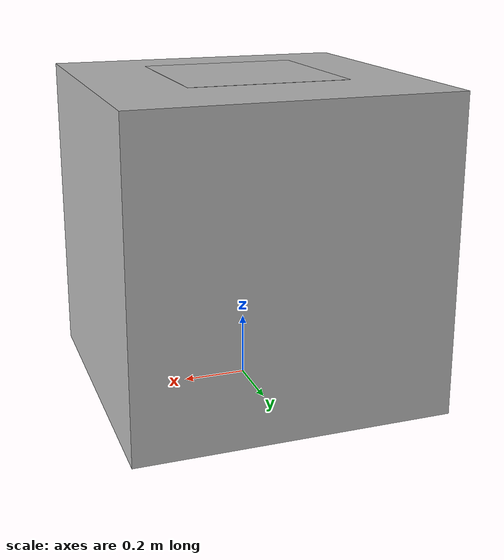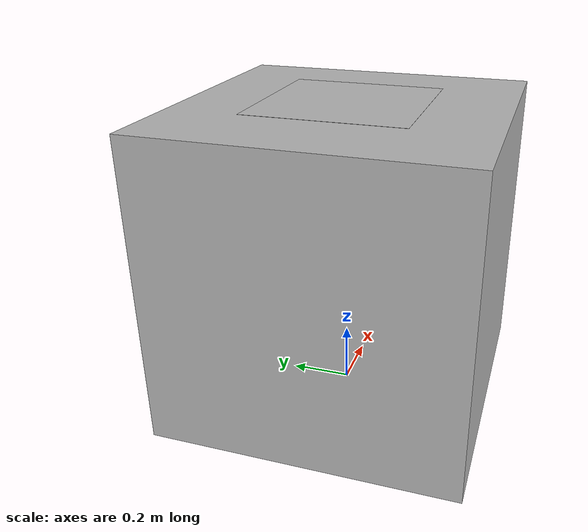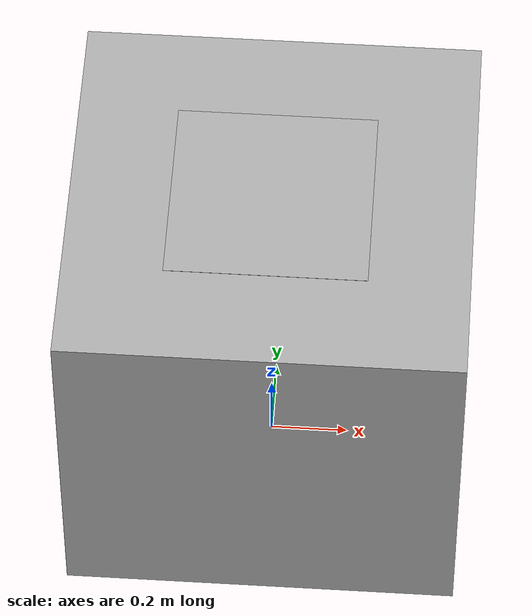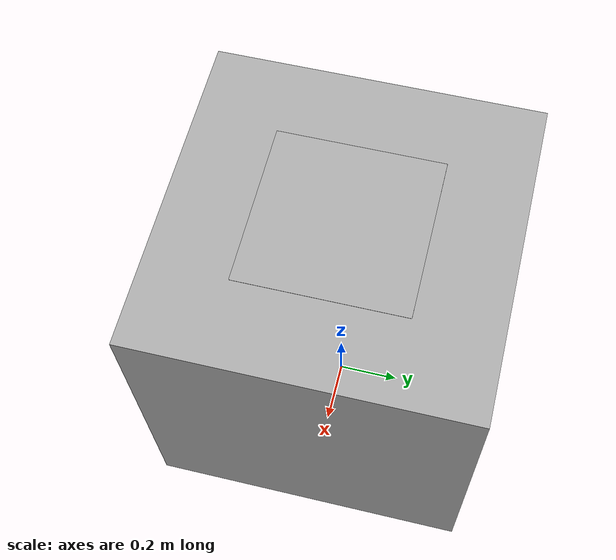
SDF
<?xml version='1.0'?>
<sdf version='1.5'>
	<model name='color_beacon_box'>
		<pose>0 0 0.5 0 0 0</pose>

		<include>
			<uri>model://color_beacon</uri>
			<pose>0 0 0.5 0 0 0</pose>
		</include>

		<link name="box_base_link">
			<inertial>
				<mass>1.0</mass>
				<inertia>					<!-- inertias are tricky to compute -->
					<!-- http://gazebosim.org/tutorials?tut=inertia&cat=build_robot -->
					<ixx>0.083</ixx>					<!-- for a box: ixx = 0.083 * mass * (y*y + z*z) -->
					<ixy>0.0</ixy>					<!-- for a box: ixy = 0 -->
					<ixz>0.0</ixz>					<!-- for a box: ixz = 0 -->
					<iyy>0.083</iyy>					<!-- for a box: iyy = 0.083 * mass * (x*x + z*z) -->
					<iyz>0.0</iyz>					<!-- for a box: iyz = 0 -->
					<izz>0.083</izz>					<!-- for a box: izz = 0.083 * mass * (x*x + y*y) -->
				</inertia>
			</inertial>
			<collision name="collision">
				<geometry>
					<box>
						<size>1 1 1</size>
					</box>
				</geometry>
			</collision>
			<visual name="visual">
				<geometry>
					<box>
						<size>1 1 1</size>
					</box>
				</geometry>
			</visual>
		</link>

		<joint name="box_to_beacon_joint" type="fixed">
			<child>color_beacon::base_link</child>
			<parent>box_base_link</parent>
		</joint>

	</model>
</sdf>

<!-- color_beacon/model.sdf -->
<sdf version='1.4'>
  <model name='color_beacon'>
    <link name='base_link'>
      <collision name='collision'>
        <geometry>
					<box>
						<size>0.5 0.5 0.01</size>
					</box>
				</geometry>
      </collision>

      <visual name='visual_0'>
        <pose>0 0 0.01 0 0 0</pose>

        <cast_shadows>false</cast_shadows>
        <geometry>
          <plane>
            <normal>0 0 1</normal>
            <size>0.5 0.5</size>
          </plane>
        </geometry>
        <material>
          <script>
            <uri>model://color_beacon/materials/scripts</uri>
            <uri>model://color_beacon/materials/textures</uri>
            <name>vrc/color_beacon</name>
          </script>
        </material>
      </visual>
    </link>
  </model>
</sdf>
